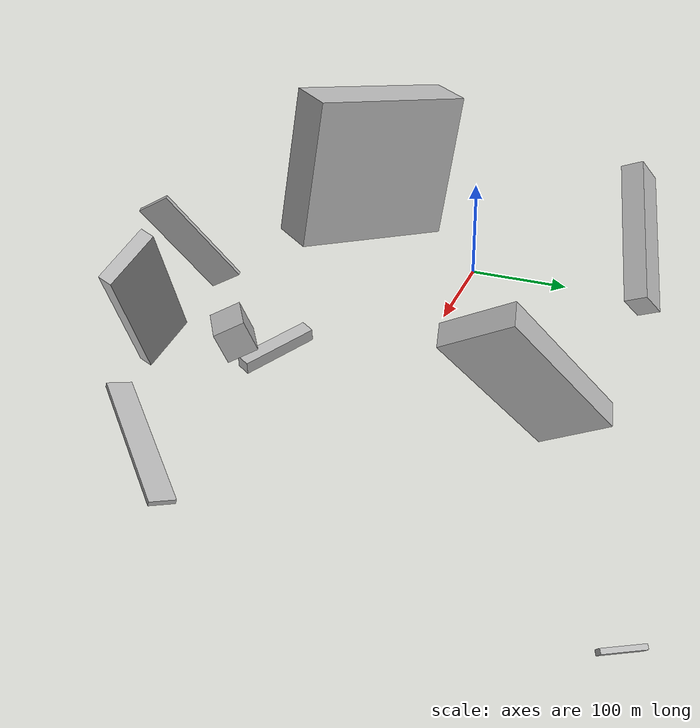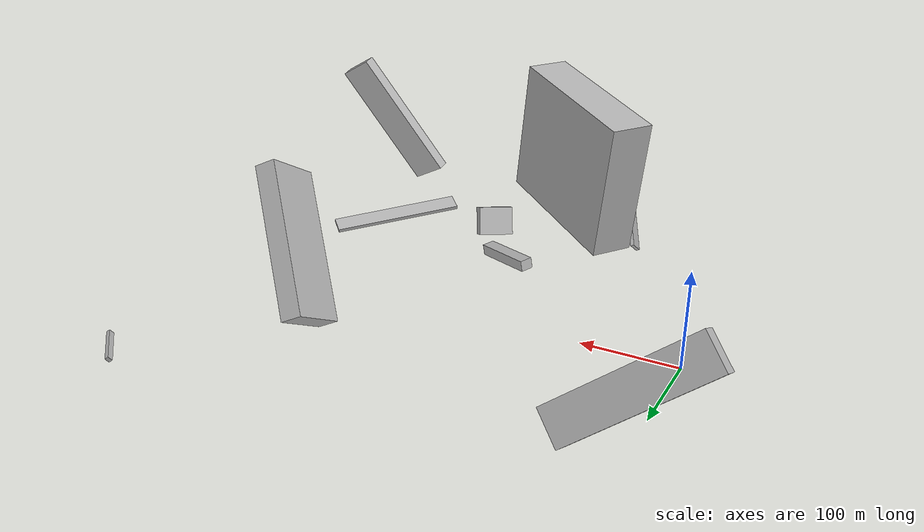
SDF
<sdf version="1.6">
 <world name="default">
  <scene>
   <sky><clouds><speed>12</speed></clouds></sky>
   <ambient>0.4 0.4 0.4 1</ambient>
   <background>0.7 0.7 0.7 1</background>
   <shadows>1</shadows>
  </scene>
  <gravity>0 0 -9.8066</gravity>
  <magnetic_field>6e-06 2.3e-05 -4.2e-05</magnetic_field>
  <physics default="0" name="default_physics" type="ode">
   <ode>
    <solver>
     <type>quick</type>
     <iters>10</iters>
     <sor>1.0</sor>
     <use_dynamic_moi_rescaling>0</use_dynamic_moi_rescaling>
    </solver>
    <constraints>
     <cfm>0</cfm>
     <erp>0.2</erp>
     <contact_max_correcting_vel>100</contact_max_correcting_vel>
     <contact_surface_layer>0.001</contact_surface_layer>
    </constraints>
   </ode>
   <max_step_size>0.004</max_step_size>
   <real_time_factor>1</real_time_factor>
   <real_time_update_rate>250</real_time_update_rate>
  </physics>
  <light name="sun" type="directional">
   <pose>0 0 10 0 0 0</pose>
   <diffuse>0.8 0.8 0.8 1</diffuse>
   <specular>0.2 0.2 0.2 1</specular>
   <attenuation>
    <range>1000</range>
    <constant>0.9</constant>
    <linear>0.01</linear>
    <quadratic>0.001</quadratic>
   </attenuation>
   <direction>-0.5 0.1 -0.9</direction>
  </light>
  <model name="building_1">
   <static>0</static>
   <pose>137.2738025196598 -256.57391871414893 57.621154064436006 1.8674264629556638 -0.5305288428199418 1.6334684303065996</pose>
   <link name="link">
    <gravity>0</gravity>
    <pose>0 0 2.0 0 0 0</pose>
    <collision name="collision"><geometry><box><size>36 114 4</size></box></geometry></collision>
    <visual name="visual">
     <cast_shadows>0</cast_shadows>
     <geometry><box><size>36 114 4</size></box></geometry>
     <material>
      <script>
       <uri>model://HANNAS_wall/materials/scripts</uri>
       <uri>model://HANNAS_wall/materials/textures</uri>
       <name>vrc/HANNAS_wall</name>
      </script>
     </material>
    </visual>
   </link>
  </model>
  <model name="building_2">
   <static>0</static>
   <pose>143.87272873551098 -67.93933802932811 105.45588986839581 0.030689066681243726 0.17578118601002385 2.516407344401508</pose>
   <link name="link">
    <gravity>0</gravity>
    <pose>0 0 66.0 0 0 0</pose>
    <collision name="collision"><geometry><box><size>150 41 132</size></box></geometry></collision>
    <visual name="visual">
     <cast_shadows>0</cast_shadows>
     <geometry><box><size>150 41 132</size></box></geometry>
     <material>
      <script>
       <uri>model://HANNAS_wall/materials/scripts</uri>
       <uri>model://HANNAS_wall/materials/textures</uri>
       <name>vrc/HANNAS_wall</name>
      </script>
     </material>
    </visual>
   </link>
  </model>
  <model name="building_3">
   <static>0</static>
   <pose>270.1032845015143 -156.15185636936712 40.63688186754703 0.005661201146270506 -1.2125358342352917 -1.0034793479423003</pose>
   <link name="link">
    <gravity>0</gravity>
    <pose>0 0 14.5 0 0 0</pose>
    <collision name="collision"><geometry><box><size>31 37 29</size></box></geometry></collision>
    <visual name="visual">
     <cast_shadows>0</cast_shadows>
     <geometry><box><size>31 37 29</size></box></geometry>
     <material>
      <script>
       <uri>model://HANNAS_wall/materials/scripts</uri>
       <uri>model://HANNAS_wall/materials/textures</uri>
       <name>vrc/HANNAS_wall</name>
      </script>
     </material>
    </visual>
   </link>
  </model>
  <model name="building_4">
   <static>0</static>
   <pose>352.79836479414644 -158.28791452465936 87.29311211568839 0.5191690646885371 0.34067731542739854 1.4152676452852821</pose>
   <link name="link">
    <gravity>0</gravity>
    <pose>0 0 75.0 0 0 0</pose>
    <collision name="collision"><geometry><box><size>11 46 150</size></box></geometry></collision>
    <visual name="visual">
     <cast_shadows>0</cast_shadows>
     <geometry><box><size>11 46 150</size></box></geometry>
     <material>
      <script>
       <uri>model://HANNAS_wall/materials/scripts</uri>
       <uri>model://HANNAS_wall/materials/textures</uri>
       <name>vrc/HANNAS_wall</name>
      </script>
     </material>
    </visual>
   </link>
  </model>
  <model name="building_5">
   <static>0</static>
   <pose>332.92958256573354 113.4188526296262 93.83373143642652 -0.7285055129797032 -0.8877885950766868 -0.7403244078494726</pose>
   <link name="link">
    <gravity>0</gravity>
    <pose>0 0 32.0 0 0 0</pose>
    <collision name="collision"><geometry><box><size>150 21 64</size></box></geometry></collision>
    <visual name="visual">
     <cast_shadows>0</cast_shadows>
     <geometry><box><size>150 21 64</size></box></geometry>
     <material>
      <script>
       <uri>model://HANNAS_wall/materials/scripts</uri>
       <uri>model://HANNAS_wall/materials/textures</uri>
       <name>vrc/HANNAS_wall</name>
      </script>
     </material>
    </visual>
   </link>
  </model>
  <model name="building_6">
   <static>0</static>
   <pose>202.1606182759334 -100.61703508682884 21.423730507798176 -1.6705508066027857 -0.13492450690957122 -2.0807056517532394</pose>
   <link name="link">
    <gravity>0</gravity>
    <pose>0 0 36.5 0 0 0</pose>
    <collision name="collision"><geometry><box><size>14 12 73</size></box></geometry></collision>
    <visual name="visual">
     <cast_shadows>0</cast_shadows>
     <geometry><box><size>14 12 73</size></box></geometry>
     <material>
      <script>
       <uri>model://HANNAS_wall/materials/scripts</uri>
       <uri>model://HANNAS_wall/materials/textures</uri>
       <name>vrc/HANNAS_wall</name>
      </script>
     </material>
    </visual>
   </link>
  </model>
  <model name="building_7">
   <static>0</static>
   <pose>-3.4590330492643915 180.47068320966915 72.91357135371825 -2.0592369509963206 -0.6203261088381471 -2.8650547334903425</pose>
   <link name="link">
    <gravity>0</gravity>
    <pose>0 0 11.5 0 0 0</pose>
    <collision name="collision"><geometry><box><size>150 37 23</size></box></geometry></collision>
    <visual name="visual">
     <cast_shadows>0</cast_shadows>
     <geometry><box><size>150 37 23</size></box></geometry>
     <material>
      <script>
       <uri>model://HANNAS_wall/materials/scripts</uri>
       <uri>model://HANNAS_wall/materials/textures</uri>
       <name>vrc/HANNAS_wall</name>
      </script>
     </material>
    </visual>
   </link>
  </model>
  <model name="building_8">
   <static>0</static>
   <pose>479.58273300123255 246.89421500181663 9.250981505466406 0.31352140012194735 -0.6208329366995613 -2.6158912506125516</pose>
   <link name="link">
    <gravity>0</gravity>
    <pose>0 0 3.0 0 0 0</pose>
    <collision name="collision"><geometry><box><size>4 38 6</size></box></geometry></collision>
    <visual name="visual">
     <cast_shadows>0</cast_shadows>
     <geometry><box><size>4 38 6</size></box></geometry>
     <material>
      <script>
       <uri>model://HANNAS_wall/materials/scripts</uri>
       <uri>model://HANNAS_wall/materials/textures</uri>
       <name>vrc/HANNAS_wall</name>
      </script>
     </material>
    </visual>
   </link>
  </model>
  <model name="building_9">
   <static>0</static>
   <pose>394.76160389209446 -152.7051044739816 17.87328373288379 0.4146197479867776 -1.2955289107801837 1.9375421850288932</pose>
   <link name="link">
    <gravity>0</gravity>
    <pose>0 0 11.0 0 0 0</pose>
    <collision name="collision"><geometry><box><size>4 150 22</size></box></geometry></collision>
    <visual name="visual">
     <cast_shadows>0</cast_shadows>
     <geometry><box><size>4 150 22</size></box></geometry>
     <material>
      <script>
       <uri>model://HANNAS_wall/materials/scripts</uri>
       <uri>model://HANNAS_wall/materials/textures</uri>
       <name>vrc/HANNAS_wall</name>
      </script>
     </material>
    </visual>
   </link>
  </model>
 </world>
</sdf>
